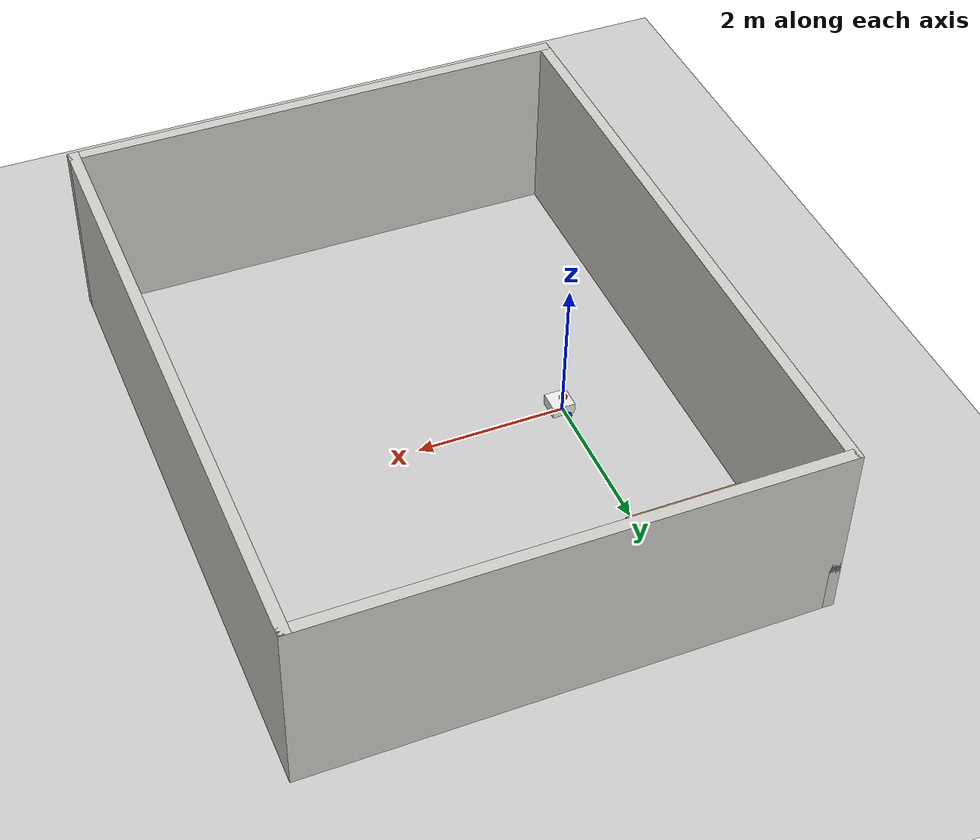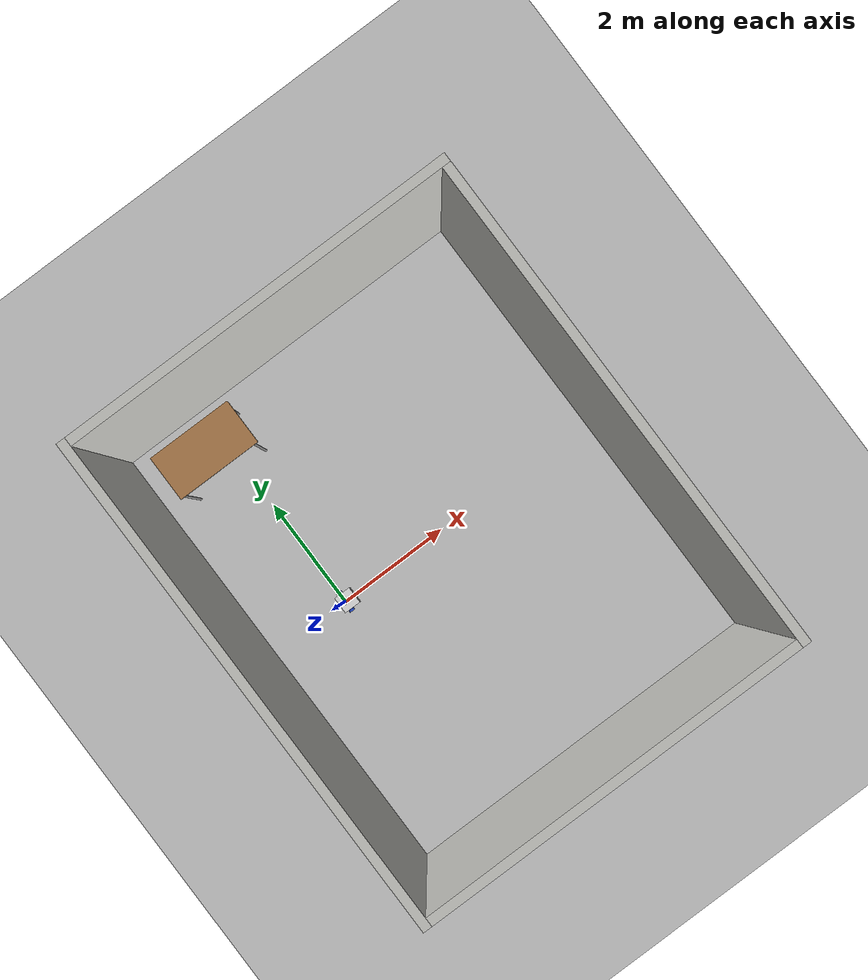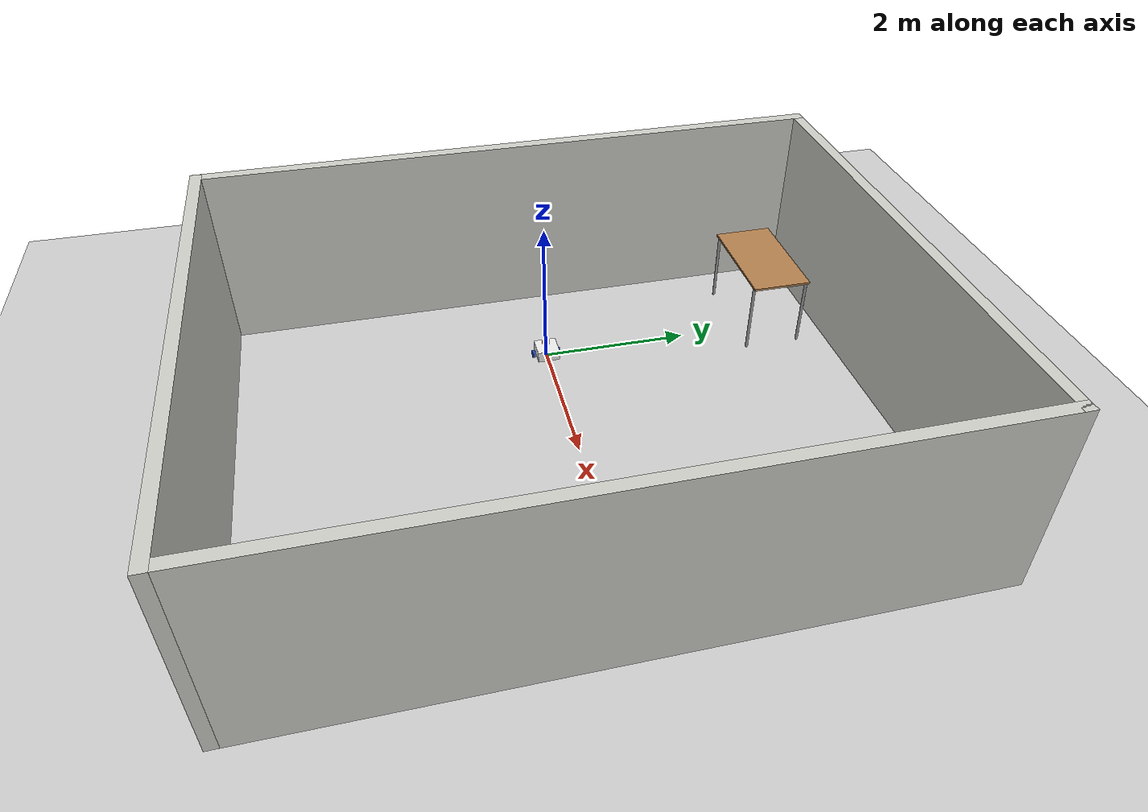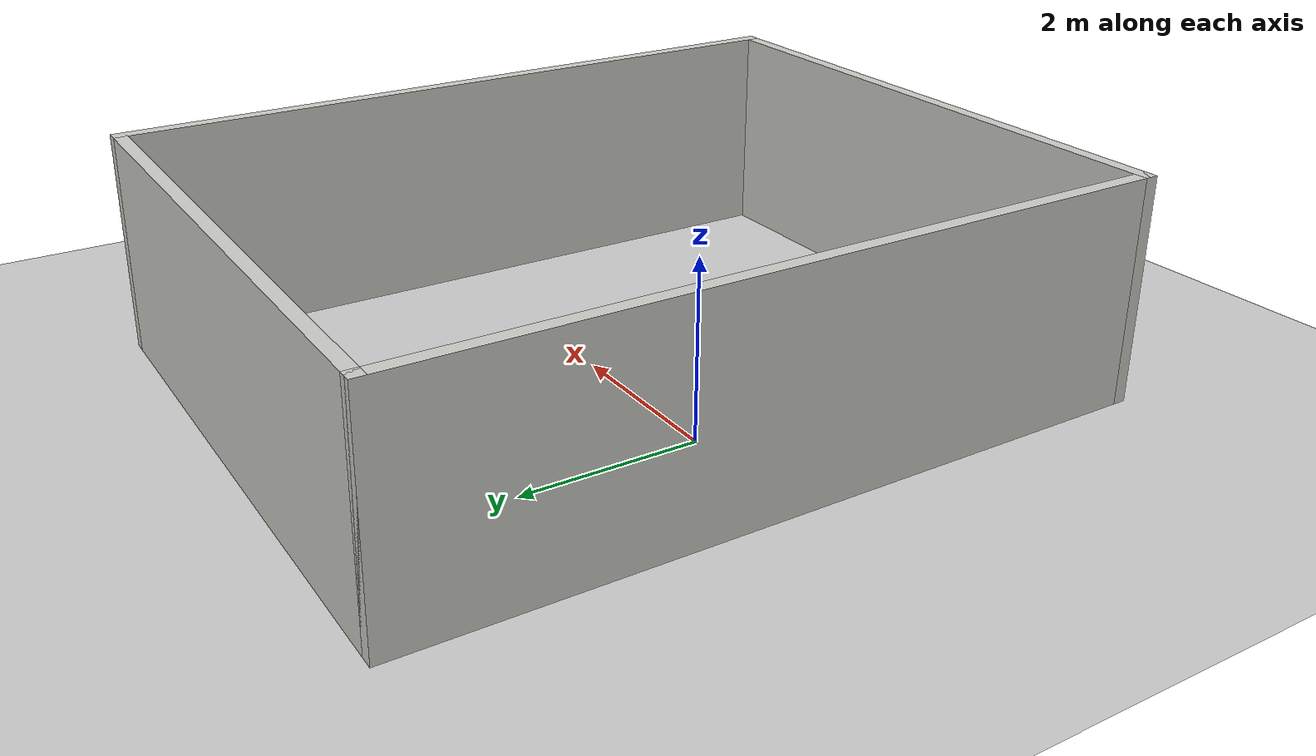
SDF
<sdf version="1.7">
 <world name="default">
  <light name="sun" type="directional">
   <pose>0 0 10 0 -0 0</pose>
   <diffuse>0.8 0.8 0.8 1</diffuse>
   <specular>0.2 0.2 0.2 1</specular>
   <attenuation>
    <range>1000</range>
    <constant>0.9</constant>
    <linear>0.01</linear>
    <quadratic>0.001</quadratic>
   </attenuation>
   <direction>-0.5 0.1 -0.9</direction>
   <spot><inner_angle>0</inner_angle><outer_angle>0</outer_angle><falloff>0</falloff></spot>
  </light>
  <model name="ground_plane">
   <static>1</static>
   <link name="link">
    <collision name="collision">
     <geometry><plane><normal>0 0 1</normal><size>100 100</size></plane></geometry>
     <surface><friction><ode><mu>100</mu><mu2>50</mu2></ode></friction></surface>
    </collision>
    <visual name="visual">
     <cast_shadows>0</cast_shadows>
     <geometry><plane><normal>0 0 1</normal><size>100 100</size></plane></geometry>
     <material>
      <script><uri>file://media/materials/scripts/gazebo.material</uri><name>Gazebo/Grey</name></script>
     </material>
    </visual>
   </link>
  </model>
  <gravity>0 0 -9.8</gravity>
  <magnetic_field>6e-06 2.3e-05 -4.2e-05</magnetic_field>
  <atmosphere type="adiabatic"/>
  <physics type="ode">
   <max_step_size>0.001</max_step_size>
   <real_time_factor>1</real_time_factor>
   <real_time_update_rate>1000</real_time_update_rate>
  </physics>
  <scene><ambient>0.4 0.4 0.4 1</ambient><background>0.7 0.7 0.7 1</background><shadows>1</shadows></scene>
  <spherical_coordinates>
   <surface_model>EARTH_WGS84</surface_model>
   <latitude_deg>0</latitude_deg>
   <longitude_deg>0</longitude_deg>
   <elevation>0</elevation>
   <heading_deg>0</heading_deg>
  </spherical_coordinates>
  <model name="my_bot">
   <link name="base_link">
    <inertial>
     <pose>0.055714 0 0.078571 0 -0 0</pose>
     <mass>0.7</mass>
     <inertia>
      <ixx>0.0064169</ixx>
      <ixy>0</ixy>
      <ixz>0.00118929</ixz>
      <iyy>0.00745405</iyy>
      <iyz>0</iyz>
      <izz>0.00876214</izz>
     </inertia>
    </inertial>
    <collision name="base_link_fixed_joint_lump__chassis_collision">
     <pose>0.05 0 0.075 0 -0 0</pose>
     <geometry><box><size>0.3 0.3 0.15</size></box></geometry>
    </collision>
    <collision name="base_link_fixed_joint_lump__caster_wheel_collision_1">
     <pose>0.14 0 0 0 -0 0</pose>
     <geometry><sphere><radius>0.05</radius></sphere></geometry>
     <surface><friction><ode><mu>0.001</mu><mu2>0.001</mu2></ode></friction></surface>
    </collision>
    <collision name="base_link_fixed_joint_lump__laser_frame_collision_2">
     <pose>0 0 0.175 0 -0 0</pose>
     <geometry><cylinder><length>0.04</length><radius>0.05</radius></cylinder></geometry>
    </collision>
    <visual name="base_link_fixed_joint_lump__chassis_visual">
     <pose>0.05 0 0.075 0 -0 0</pose>
     <geometry><box><size>0.3 0.3 0.15</size></box></geometry>
     <material>
      <script><name>Gazebo/White</name><uri>file://media/materials/scripts/gazebo.material</uri></script>
     </material>
    </visual>
    <visual name="base_link_fixed_joint_lump__caster_wheel_visual_1">
     <pose>0.14 0 0 0 -0 0</pose>
     <geometry><sphere><radius>0.05</radius></sphere></geometry>
     <material>
      <script><name>Gazebo/Black</name><uri>file://media/materials/scripts/gazebo.material</uri></script>
     </material>
    </visual>
    <visual name="base_link_fixed_joint_lump__laser_frame_visual_2">
     <pose>0 0 0.175 0 -0 0</pose>
     <geometry><cylinder><length>0.04</length><radius>0.05</radius></cylinder></geometry>
     <material>
      <script><name>Gazebo/Red</name><uri>file://media/materials/scripts/gazebo.material</uri></script>
     </material>
    </visual>
    <sensor name="laser" type="ray">
     <visualize>1</visualize>
     <update_rate>10</update_rate>
     <ray>
      <scan>
       <horizontal>
        <samples>360</samples>
        <min_angle>-3.14</min_angle>
        <max_angle>3.14</max_angle>
        <resolution>1</resolution>
       </horizontal>
       <vertical><samples>1</samples><min_angle>0</min_angle><max_angle>0</max_angle></vertical>
      </scan>
      <range><min>0.3</min><max>12</max></range>
     </ray>
     <plugin name="laser_controller" filename="libgazebo_ros_ray_sensor.so">
      <ros><argument>~/out:=scan</argument></ros>
      <output_type>sensor_msgs/LaserScan</output_type>
      <frame_name>laser_frame</frame_name>
     </plugin>
     <pose>0 0 0.175 0 -0 0</pose>
    </sensor>
   </link>
   <joint name="left_wheel_joint" type="revolute">
    <pose relative_to="base_link">0 0.175 0 -1.5708 0 0</pose>
    <parent>base_link</parent>
    <child>left_wheel</child>
    <axis>
     <xyz>0 0 1</xyz>
     <limit><lower>-1e+16</lower><upper>1e+16</upper></limit>
     <dynamics><spring_reference>0</spring_reference><spring_stiffness>0</spring_stiffness></dynamics>
    </axis>
   </joint>
   <link name="left_wheel">
    <pose relative_to="left_wheel_joint">0 0 0 0 -0 0</pose>
    <inertial>
     <mass>0.1</mass>
     <inertia>
      <ixx>7.58333e-05</ixx>
      <ixy>0</ixy>
      <ixz>0</ixz>
      <iyy>7.58333e-05</iyy>
      <iyz>0</iyz>
      <izz>0.000125</izz>
     </inertia>
    </inertial>
    <collision name="left_wheel_collision">
     <geometry><cylinder><length>0.04</length><radius>0.05</radius></cylinder></geometry>
    </collision>
    <visual name="left_wheel_visual">
     <geometry><cylinder><length>0.04</length><radius>0.05</radius></cylinder></geometry>
     <material>
      <script><name>Gazebo/Blue</name><uri>file://media/materials/scripts/gazebo.material</uri></script>
     </material>
    </visual>
   </link>
   <joint name="right_wheel_joint" type="revolute">
    <pose relative_to="base_link">0 -0.175 0 -1.5708 0 0</pose>
    <parent>base_link</parent>
    <child>right_wheel</child>
    <axis>
     <xyz>0 0 -1</xyz>
     <limit><lower>-1e+16</lower><upper>1e+16</upper></limit>
     <dynamics><spring_reference>0</spring_reference><spring_stiffness>0</spring_stiffness></dynamics>
    </axis>
   </joint>
   <link name="right_wheel">
    <pose relative_to="right_wheel_joint">0 0 0 0 -0 0</pose>
    <inertial>
     <mass>0.1</mass>
     <inertia>
      <ixx>7.58333e-05</ixx>
      <ixy>0</ixy>
      <ixz>0</ixz>
      <iyy>7.58333e-05</iyy>
      <iyz>0</iyz>
      <izz>0.000125</izz>
     </inertia>
    </inertial>
    <collision name="right_wheel_collision">
     <geometry><cylinder><length>0.04</length><radius>0.05</radius></cylinder></geometry>
    </collision>
    <visual name="right_wheel_visual">
     <geometry><cylinder><length>0.04</length><radius>0.05</radius></cylinder></geometry>
     <material>
      <script><name>Gazebo/Blue</name><uri>file://media/materials/scripts/gazebo.material</uri></script>
     </material>
    </visual>
   </link>
   <static>0</static>
   <plugin name="gazebo_ros2_control" filename="libgazebo_ros2_control.so">
    <parameters>/home/balaraman1928/dev_ws/install/my_bot/share/my_bot/config/my_controllers.yaml</parameters>
   </plugin>
   <pose>0.003266 -0.001033 0.05 0 3e-06 -0.000633</pose>
  </model>
  <model name="altered.world">
   <pose>1.76698 -0.101257 0 0 -0 0</pose>
   <link name="Wall_10">
    <collision name="Wall_10_Collision">
     <geometry><box><size>8.5 0.15 2.5</size></box></geometry>
     <pose>0 0 1.25 0 -0 0</pose>
    </collision>
    <visual name="Wall_10_Visual">
     <pose>0 0 1.25 0 -0 0</pose>
     <geometry><box><size>8.5 0.15 2.5</size></box></geometry>
     <material>
      <script><uri>file://media/materials/scripts/gazebo.material</uri><name>Gazebo/CeilingTiled</name></script>
      <ambient>1 1 1 1</ambient>
     </material>
     <meta><layer>0</layer></meta>
    </visual>
    <pose>-3.3 0 0 0 -0 1.5708</pose>
   </link>
   <link name="Wall_11">
    <collision name="Wall_11_Collision">
     <geometry><box><size>6.75 0.15 2.5</size></box></geometry>
     <pose>0 0 1.25 0 -0 0</pose>
    </collision>
    <visual name="Wall_11_Visual">
     <pose>0 0 1.25 0 -0 0</pose>
     <geometry><box><size>6.75 0.15 2.5</size></box></geometry>
     <material>
      <script><uri>file://media/materials/scripts/gazebo.material</uri><name>Gazebo/CeilingTiled</name></script>
      <ambient>1 1 1 1</ambient>
     </material>
     <meta><layer>0</layer></meta>
    </visual>
    <pose>0 4.175 0 0 -0 0</pose>
   </link>
   <link name="Wall_8">
    <collision name="Wall_8_Collision">
     <geometry><box><size>8.5 0.15 2.5</size></box></geometry>
     <pose>0 0 1.25 0 -0 0</pose>
    </collision>
    <visual name="Wall_8_Visual">
     <pose>0 0 1.25 0 -0 0</pose>
     <geometry><box><size>8.5 0.15 2.5</size></box></geometry>
     <material>
      <script><uri>file://media/materials/scripts/gazebo.material</uri><name>Gazebo/CeilingTiled</name></script>
      <ambient>1 1 1 1</ambient>
     </material>
     <meta><layer>0</layer></meta>
    </visual>
    <pose>3.3 0 0 0 -0 -1.5708</pose>
   </link>
   <link name="Wall_9">
    <collision name="Wall_9_Collision">
     <geometry><box><size>6.75 0.15 2.5</size></box></geometry>
     <pose>0 0 1.25 0 -0 0</pose>
    </collision>
    <visual name="Wall_9_Visual">
     <pose>0 0 1.25 0 -0 0</pose>
     <geometry><box><size>6.75 0.15 2.5</size></box></geometry>
     <material>
      <script><uri>file://media/materials/scripts/gazebo.material</uri><name>Gazebo/CeilingTiled</name></script>
      <ambient>1 1 1 1</ambient>
     </material>
     <meta><layer>0</layer></meta>
    </visual>
    <pose>0 -4.175 0 0 -0 3.14159</pose>
   </link>
   <static>1</static>
  </model>
  <model name="table">
   <static>1</static>
   <link name="link">
    <collision name="surface">
     <pose>0 0 1 0 -0 0</pose>
     <geometry><box><size>1.5 0.8 0.03</size></box></geometry>
     <surface><friction><ode><mu>0.6</mu><mu2>0.6</mu2></ode></friction></surface>
    </collision>
    <visual name="visual1">
     <pose>0 0 1 0 -0 0</pose>
     <geometry><box><size>1.5 0.8 0.03</size></box></geometry>
     <material>
      <script><uri>file://media/materials/scripts/gazebo.material</uri><name>Gazebo/Wood</name></script>
     </material>
    </visual>
    <collision name="front_left_leg">
     <pose>0.68 0.38 0.5 0 -0 0</pose>
     <geometry><cylinder><radius>0.02</radius><length>1</length></cylinder></geometry>
    </collision>
    <visual name="front_left_leg">
     <pose>0.68 0.38 0.5 0 -0 0</pose>
     <geometry><cylinder><radius>0.02</radius><length>1</length></cylinder></geometry>
     <material>
      <script><uri>file://media/materials/scripts/gazebo.material</uri><name>Gazebo/Grey</name></script>
     </material>
    </visual>
    <collision name="front_right_leg">
     <pose>0.68 -0.38 0.5 0 -0 0</pose>
     <geometry><cylinder><radius>0.02</radius><length>1</length></cylinder></geometry>
    </collision>
    <visual name="front_right_leg">
     <pose>0.68 -0.38 0.5 0 -0 0</pose>
     <geometry><cylinder><radius>0.02</radius><length>1</length></cylinder></geometry>
     <material>
      <script><uri>file://media/materials/scripts/gazebo.material</uri><name>Gazebo/Grey</name></script>
     </material>
    </visual>
    <collision name="back_right_leg">
     <pose>-0.68 -0.38 0.5 0 -0 0</pose>
     <geometry><cylinder><radius>0.02</radius><length>1</length></cylinder></geometry>
    </collision>
    <visual name="back_right_leg">
     <pose>-0.68 -0.38 0.5 0 -0 0</pose>
     <geometry><cylinder><radius>0.02</radius><length>1</length></cylinder></geometry>
     <material>
      <script><uri>file://media/materials/scripts/gazebo.material</uri><name>Gazebo/Grey</name></script>
     </material>
    </visual>
    <collision name="back_left_leg">
     <pose>-0.68 0.38 0.5 0 -0 0</pose>
     <geometry><cylinder><radius>0.02</radius><length>1</length></cylinder></geometry>
    </collision>
    <visual name="back_left_leg">
     <pose>-0.68 0.38 0.5 0 -0 0</pose>
     <geometry><cylinder><radius>0.02</radius><length>1</length></cylinder></geometry>
     <material>
      <script><uri>file://media/materials/scripts/gazebo.material</uri><name>Gazebo/Grey</name></script>
     </material>
    </visual>
   </link>
   <pose>-0.22935 3.20522 0 0 -0 0</pose>
  </model>
 </world>
</sdf>
